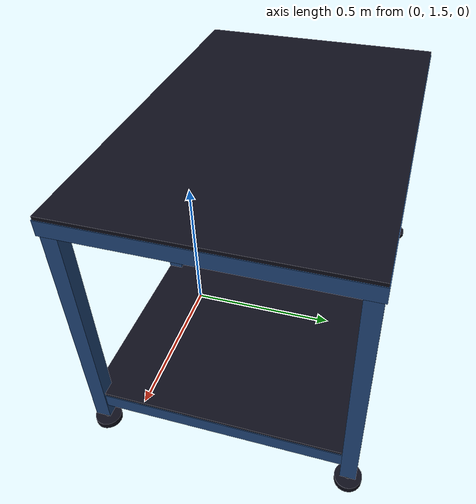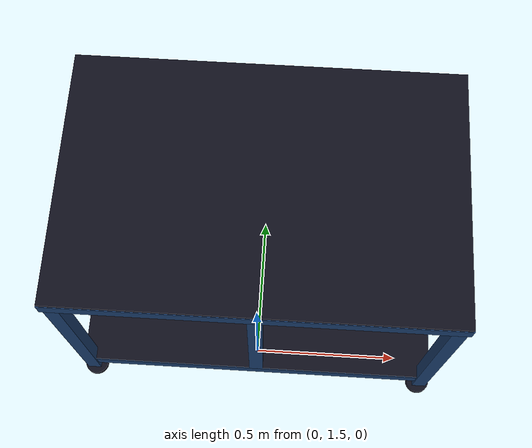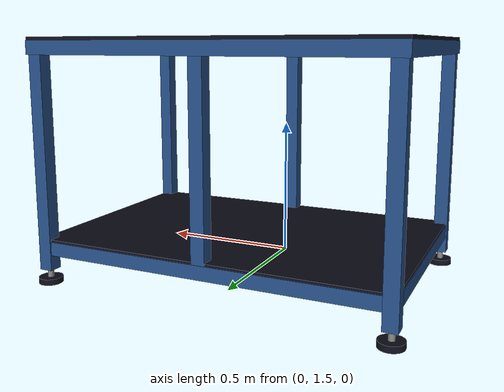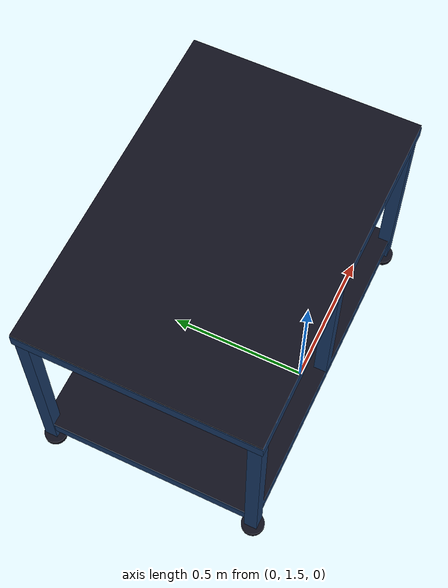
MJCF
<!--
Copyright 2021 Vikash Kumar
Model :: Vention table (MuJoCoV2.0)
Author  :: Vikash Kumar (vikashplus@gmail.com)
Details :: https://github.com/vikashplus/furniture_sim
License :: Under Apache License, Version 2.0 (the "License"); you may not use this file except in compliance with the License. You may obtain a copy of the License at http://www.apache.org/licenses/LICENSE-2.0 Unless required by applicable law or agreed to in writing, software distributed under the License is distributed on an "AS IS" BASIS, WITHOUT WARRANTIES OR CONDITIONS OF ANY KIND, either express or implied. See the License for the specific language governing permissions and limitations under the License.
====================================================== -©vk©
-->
<mujoco model="Vention table">

    <include file="ventionTable/ventionTable_asset.xml"/>

    <worldbody>
        <include file="ventionTable/ventionTable_body.xml" />
    </worldbody>

</mujoco>

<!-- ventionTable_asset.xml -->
<mujocoinclude>

    <compiler inertiafromgeom="auto" inertiagrouprange="4 4" angle="radian"/>

    <asset>
        <material name="vention_black" rgba="0.05 0.05 0.1 1" reflectance="1" shininess=".5"  />
        <material name="vention_blue" rgba=".14 .30 .52 1" reflectance="10" shininess=".1"  />
    </asset>

    <default>
        <default class="vention">
            <geom conaffinity="0" contype="0" group="1"/>
            <default class="vention_collision">
                <geom pos="2 2 0" conaffinity="1" condim="3" contype="0" group="4" margin="0.001" rgba=".4 .5 .6 1"/>
            </default>
        </default>
    </default>

</mujocoinclude>

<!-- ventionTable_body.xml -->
<mujocoinclude>

    <body name="vention table" childclass="vention" pos="0 1.8 0.">
        <!-- leg floor pads -->
        <geom type="cylinder" size="0.040 0.010" pos="-.585 -.383 0.010" material="vention_black"/>
        <geom type="cylinder" size="0.040 0.010" pos="0.585 -.383 0.010" material="vention_black"/>
        <geom type="cylinder" size="0.040 0.010" pos="-.585 0.383 0.010" material="vention_black"/>
        <geom type="cylinder" size="0.040 0.010" pos="0.585 0.383 0.010" material="vention_black"/>

        <!-- leg pad stems -->
        <geom type="cylinder" size="0.010 0.020" pos="-.585 -.383 0.030" rgba=".5 .5 .5 1"/>
        <geom type="cylinder" size="0.010 0.020" pos="0.585 -.383 0.030" rgba=".5 .5 .5 1"/>
        <geom type="cylinder" size="0.010 0.020" pos="-.585 0.383 0.030" rgba=".5 .5 .5 1"/>
        <geom type="cylinder" size="0.010 0.020" pos="0.585 0.383 0.030" rgba=".5 .5 .5 1"/>

        <!-- legs -->
        <geom type="box" size="0.023 0.023 .387" pos="-.585 -.383 0.435" material="vention_blue"/>
        <geom type="box" size="0.023 0.023 .387" pos="0.585 -.383 0.435" material="vention_blue"/>
        <geom type="box" size="0.023 0.023 .387" pos="-.585 0.383 0.435" material="vention_blue"/>
        <geom type="box" size="0.023 0.023 .387" pos="0.585 0.383 0.435" material="vention_blue"/>

        <!-- middle legs -->
        <geom type="box" size="0.023 0.023 .337" pos="0 0.377 0.440" material="vention_blue"/>
        <geom type="box" size="0.023 0.023 .337" pos="0 -.377 0.440" material="vention_blue"/>

        <!-- top board -->
        <geom type="box" size="0.612 0.409 0.023" pos="0 0 0.801" material="vention_black"/>
        <geom type="box" size="0.614 0.411 0.023" pos="0 0 0.790" material="vention_blue"/>

        <!-- bottom board -->
        <geom type="box" size="0.602 0.399 0.005" pos="0 0 0.150" material="vention_black"/>
        <geom type="box" size="0.604 0.401 0.023" pos="0 0 0.124" material="vention_blue"/>

        <!-- collision -->
        <geom type="box" size="0.604 0.401 0.411" pos="0 0 0.413" class="vention_collision"/>
    </body>

</mujocoinclude>
